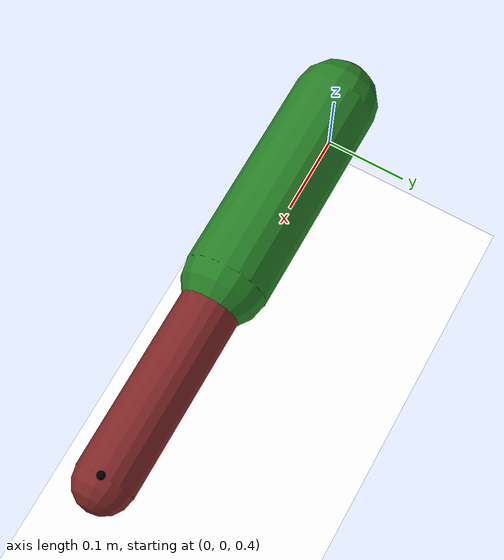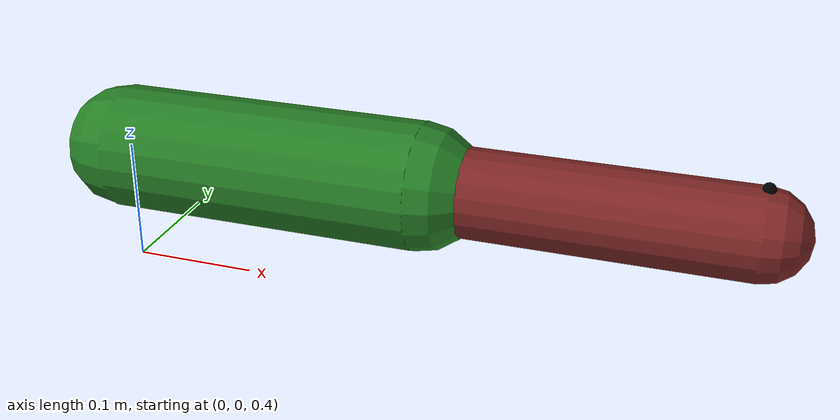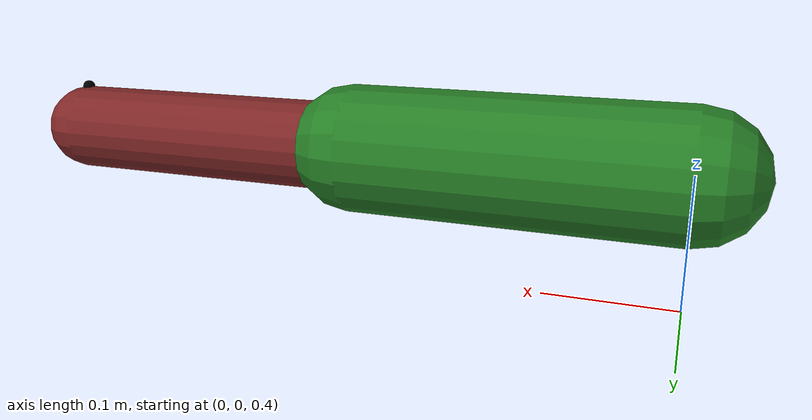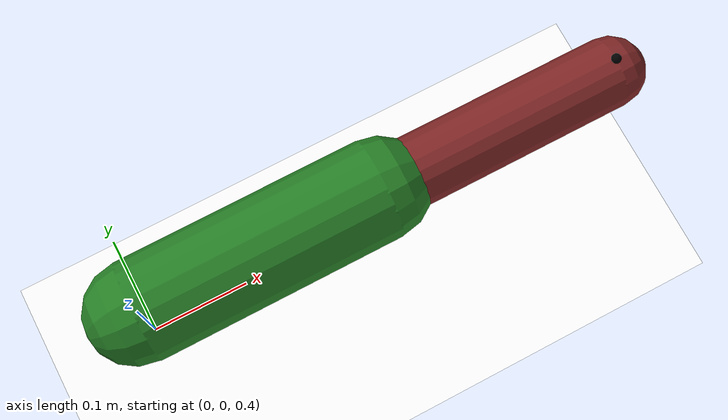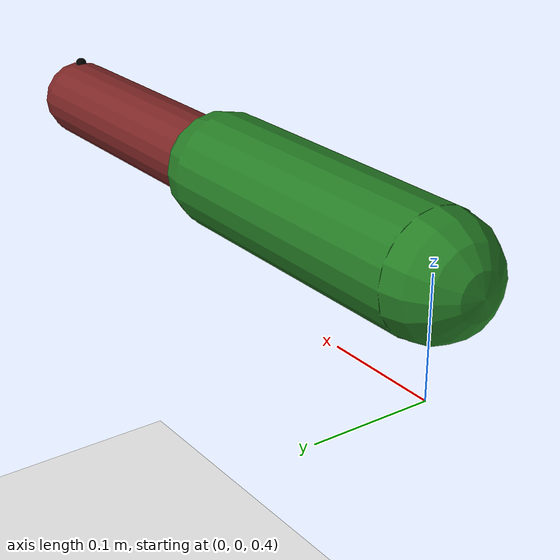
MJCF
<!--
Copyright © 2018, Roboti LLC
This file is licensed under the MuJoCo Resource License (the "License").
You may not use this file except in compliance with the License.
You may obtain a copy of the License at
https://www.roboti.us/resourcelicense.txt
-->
<mujoco model="two_link">

    <include file="scene.xml"/>

    <option solver="CG" tolerance="1e-6"/>

    <size nconmax="50" njmax="500" nstack="50000"/>

    <worldbody>
      <body name="link1" pos="0 0 0.5">
          <geom type="capsule" fromto="0 0 0 0.25 0 0" size="0.05" rgba="0.15 0.5 0.15 1"/>
          <joint name="q1" type="hinge" pos="0 0 0" axis="0 0 1" limited="true" range="-120 120"/>
              <body name="link2" pos="0.25 0 0">
                  <geom type="capsule" fromto="0 0 0 0.25 0 0" size="0.035" rgba="0.5 0.15 0.15 1"/>
                  <joint name="q2" type="hinge" pos="0 0 0" axis="0 0 1" limited="true" range="-120 120"/>
                  <site name="ee" rgba="0 0 0 1" pos="0.25 0 0"/>
                  <site name="ee_visual" rgba="0 0 0 1" pos="0.25 0 0.035"/>
              </body>
      </body>
    </worldbody>

    <actuator>
    		<motor name="motor_1" joint="q1" gear="1"/>
    		<motor name="motor_2" joint="q2" gear="1"/>
    </actuator>
</mujoco>

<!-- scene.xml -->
<mujoco>

    <statistic extent="2" meansize=".05"/>

    <option timestep="0.005" solver="Newton" iterations="30" tolerance="1e-10" jacobian="sparse" cone="pyramidal"/>

    <visual>
        <rgba haze="0.15 0.25 0.35 1"/>
        <quality shadowsize="2048"/>
        <map stiffness="700" shadowscale="0.5" fogstart="10" fogend="15" zfar="40" haze="0.3"/>
    </visual>
    <asset>
        <texture type="skybox" builtin="gradient" rgb1="0 0 0" rgb2="0 0 0" width="512" height="512"/>
        <texture name="texcarpet" type="2d" file="carpet.png"/>
        <texture name="texsponge" type="2d" file="sponge.png"/>
        <texture name="texmarble" type="cube" file="marble.png"/>

        <material name="matplane" reflectance="0.3" texture="texplane" texrepeat="1 1" texuniform="true"/>
        <material name="matcarpet" texture="texcarpet"/>
        <material name="matsponge" texture="texsponge" specular="0.3"/>
        <material name="matmarble" texture="texmarble" rgba=".7 .7 .7 1"/>
    </asset>

    <worldbody>
        <light directional="true" diffuse=".4 .4 .4" specular="0.1 0.1 0.1" pos="0 0 5.0" dir="0 0 -1" castshadow="false"/>
        <light directional="true" diffuse=".6 .6 .6" specular="0.2 0.2 0.2" pos="0 0 4" dir="0 0 -1"/>

        <geom name="ground" type="plane" size="0 0 1" pos="0 0 0" quat="1 0 0 0" material="matplane" condim="1"/>

    </worldbody>
</mujoco>
